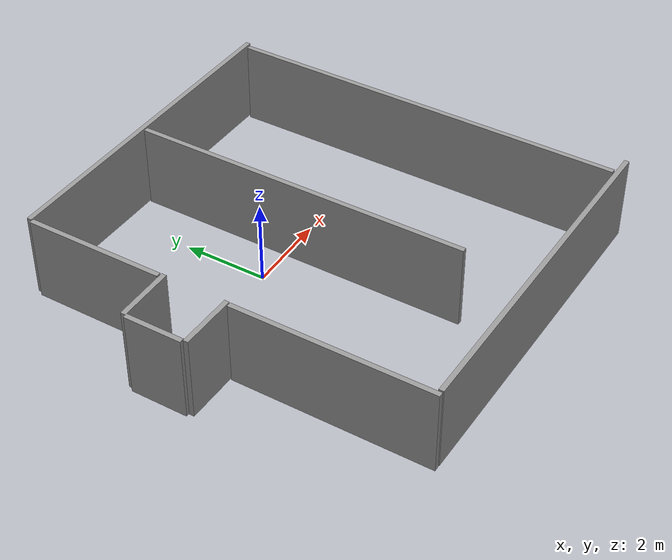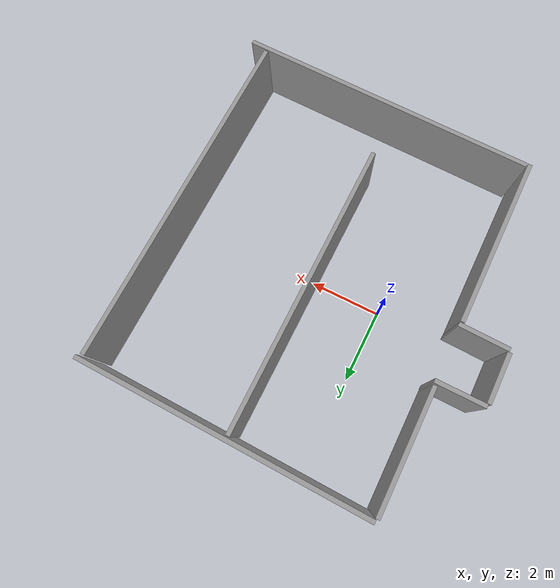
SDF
<?xml version='1.0'?>
<sdf version='1.6'>
  <model name='toiletenv'>
    <link name='link_0'>
      <inertial>
        <mass>3061.44</mass>
        <inertia>
          <ixx>1709.99</ixx>
          <ixy>0</ixy>
          <ixz>0</ixz>
          <iyy>1188.29</iyy>
          <iyz>0</iyz>
          <izz>529.767</izz>
        </inertia>
        <pose frame=''>0 0 0 0 -0 0</pose>
      </inertial>
      <pose frame=''>-3.44068 0.35836 0 0 -0 0</pose>
      <gravity>0</gravity>
      <self_collide>0</self_collide>
      <kinematic>0</kinematic>
      <enable_wind>0</enable_wind>
      <visual name='visual'>
        <pose frame=''>0 0 0 0 -0 0</pose>
        <geometry>
          <box>
            <size>0.125789 1.43552 2.15452</size>
          </box>
        </geometry>
        <material>
          <lighting>1</lighting>
          <script>
            <uri>file://media/materials/scripts/gazebo.material</uri>
            <name>Gazebo/Grey</name>
          </script>
          <shader type='vertex'>
            <normal_map>__default__</normal_map>
          </shader>
        </material>
        <transparency>0</transparency>
        <cast_shadows>1</cast_shadows>
      </visual>
      <collision name='collision'>
        <laser_retro>0</laser_retro>
        <max_contacts>10</max_contacts>
        <pose frame=''>0 0 0 0 -0 0</pose>
        <geometry>
          <box>
            <size>0.125789 1.43552 2.15452</size>
          </box>
        </geometry>
        <surface>
          <friction>
            <ode>
              <mu>1</mu>
              <mu2>1</mu2>
              <fdir1>0 0 0</fdir1>
              <slip1>0</slip1>
              <slip2>0</slip2>
            </ode>
            <torsional>
              <coefficient>1</coefficient>
              <patch_radius>0</patch_radius>
              <surface_radius>0</surface_radius>
              <use_patch_radius>1</use_patch_radius>
              <ode>
                <slip>0</slip>
              </ode>
            </torsional>
          </friction>
          <bounce>
            <restitution_coefficient>0</restitution_coefficient>
            <threshold>1e+06</threshold>
          </bounce>
          <contact>
            <collide_without_contact>0</collide_without_contact>
            <collide_without_contact_bitmask>1</collide_without_contact_bitmask>
            <collide_bitmask>1</collide_bitmask>
            <ode>
              <soft_cfm>0</soft_cfm>
              <soft_erp>0.2</soft_erp>
              <kp>1e+13</kp>
              <kd>1</kd>
              <max_vel>0.01</max_vel>
              <min_depth>0</min_depth>
            </ode>
            <bullet>
              <split_impulse>1</split_impulse>
              <split_impulse_penetration_threshold>-0.01</split_impulse_penetration_threshold>
              <soft_cfm>0</soft_cfm>
              <soft_erp>0.2</soft_erp>
              <kp>1e+13</kp>
              <kd>1</kd>
            </bullet>
          </contact>
        </surface>
      </collision>
    </link>
    <link name='link_0_clone'>
      <inertial>
        <mass>3061.44</mass>
        <inertia>
          <ixx>1709.99</ixx>
          <ixy>0</ixy>
          <ixz>0</ixz>
          <iyy>1188.29</iyy>
          <iyz>0</iyz>
          <izz>529.767</izz>
        </inertia>
        <pose frame=''>0 0 0 0 -0 0</pose>
      </inertial>
      <pose frame=''>-2.70872 1.14414 0 0 0 -1.57036</pose>
      <gravity>0</gravity>
      <self_collide>0</self_collide>
      <kinematic>0</kinematic>
      <enable_wind>0</enable_wind>
      <visual name='visual'>
        <pose frame=''>0 0 0 0 -0 0</pose>
        <geometry>
          <box>
            <size>0.125789 1.43552 2.15452</size>
          </box>
        </geometry>
        <material>
          <lighting>1</lighting>
          <script>
            <uri>file://media/materials/scripts/gazebo.material</uri>
            <name>Gazebo/Grey</name>
          </script>
          <shader type='vertex'>
            <normal_map>__default__</normal_map>
          </shader>
        </material>
        <transparency>0</transparency>
        <cast_shadows>1</cast_shadows>
      </visual>
      <collision name='collision'>
        <laser_retro>0</laser_retro>
        <max_contacts>10</max_contacts>
        <pose frame=''>0 0 0 0 -0 0</pose>
        <geometry>
          <box>
            <size>0.125789 1.43552 2.15452</size>
          </box>
        </geometry>
        <surface>
          <friction>
            <ode>
              <mu>1</mu>
              <mu2>1</mu2>
              <fdir1>0 0 0</fdir1>
              <slip1>0</slip1>
              <slip2>0</slip2>
            </ode>
            <torsional>
              <coefficient>1</coefficient>
              <patch_radius>0</patch_radius>
              <surface_radius>0</surface_radius>
              <use_patch_radius>1</use_patch_radius>
              <ode>
                <slip>0</slip>
              </ode>
            </torsional>
          </friction>
          <bounce>
            <restitution_coefficient>0</restitution_coefficient>
            <threshold>1e+06</threshold>
          </bounce>
          <contact>
            <collide_without_contact>0</collide_without_contact>
            <collide_without_contact_bitmask>1</collide_without_contact_bitmask>
            <collide_bitmask>1</collide_bitmask>
            <ode>
              <soft_cfm>0</soft_cfm>
              <soft_erp>0.2</soft_erp>
              <kp>1e+13</kp>
              <kd>1</kd>
              <max_vel>0.01</max_vel>
              <min_depth>0</min_depth>
            </ode>
            <bullet>
              <split_impulse>1</split_impulse>
              <split_impulse_penetration_threshold>-0.01</split_impulse_penetration_threshold>
              <soft_cfm>0</soft_cfm>
              <soft_erp>0.2</soft_erp>
              <kp>1e+13</kp>
              <kd>1</kd>
            </bullet>
          </contact>
        </surface>
      </collision>
    </link>
    <link name='link_0_clone_0'>
      <inertial>
        <mass>3061.44</mass>
        <inertia>
          <ixx>1709.99</ixx>
          <ixy>0</ixy>
          <ixz>0</ixz>
          <iyy>1188.29</iyy>
          <iyz>0</iyz>
          <izz>529.767</izz>
        </inertia>
        <pose frame=''>0 0 0 0 -0 0</pose>
      </inertial>
      <pose frame=''>-2.70687 -0.448529 0 0 -0 1.54952</pose>
      <gravity>0</gravity>
      <self_collide>0</self_collide>
      <kinematic>0</kinematic>
      <enable_wind>0</enable_wind>
      <visual name='visual'>
        <pose frame=''>0 0 0 0 -0 0</pose>
        <geometry>
          <box>
            <size>0.125789 1.43552 2.15452</size>
          </box>
        </geometry>
        <material>
          <lighting>1</lighting>
          <script>
            <uri>file://media/materials/scripts/gazebo.material</uri>
            <name>Gazebo/Grey</name>
          </script>
          <shader type='vertex'>
            <normal_map>__default__</normal_map>
          </shader>
        </material>
        <transparency>0</transparency>
        <cast_shadows>1</cast_shadows>
      </visual>
      <collision name='collision'>
        <laser_retro>0</laser_retro>
        <max_contacts>10</max_contacts>
        <pose frame=''>0 0 0 0 -0 0</pose>
        <geometry>
          <box>
            <size>0.125789 1.43552 2.15452</size>
          </box>
        </geometry>
        <surface>
          <friction>
            <ode>
              <mu>1</mu>
              <mu2>1</mu2>
              <fdir1>0 0 0</fdir1>
              <slip1>0</slip1>
              <slip2>0</slip2>
            </ode>
            <torsional>
              <coefficient>1</coefficient>
              <patch_radius>0</patch_radius>
              <surface_radius>0</surface_radius>
              <use_patch_radius>1</use_patch_radius>
              <ode>
                <slip>0</slip>
              </ode>
            </torsional>
          </friction>
          <bounce>
            <restitution_coefficient>0</restitution_coefficient>
            <threshold>1e+06</threshold>
          </bounce>
          <contact>
            <collide_without_contact>0</collide_without_contact>
            <collide_without_contact_bitmask>1</collide_without_contact_bitmask>
            <collide_bitmask>1</collide_bitmask>
            <ode>
              <soft_cfm>0</soft_cfm>
              <soft_erp>0.2</soft_erp>
              <kp>1e+13</kp>
              <kd>1</kd>
              <max_vel>0.01</max_vel>
              <min_depth>0</min_depth>
            </ode>
            <bullet>
              <split_impulse>1</split_impulse>
              <split_impulse_penetration_threshold>-0.01</split_impulse_penetration_threshold>
              <soft_cfm>0</soft_cfm>
              <soft_erp>0.2</soft_erp>
              <kp>1e+13</kp>
              <kd>1</kd>
            </bullet>
          </contact>
        </surface>
      </collision>
    </link>
    <link name='link_0_clone_1'>
      <inertial>
        <mass>10647.6</mass>
        <inertia>
          <ixx>26236.3</ixx>
          <ixy>0</ixy>
          <ixz>0</ixz>
          <iyy>4132.83</iyy>
          <iyz>0</iyz>
          <izz>22131.5</izz>
        </inertia>
        <pose frame=''>0 0 0 0 -0 0</pose>
      </inertial>
      <pose frame=''>-2.05907 -3.04924 0 0 -0 0</pose>
      <gravity>0</gravity>
      <self_collide>0</self_collide>
      <kinematic>0</kinematic>
      <enable_wind>0</enable_wind>
      <visual name='visual'>
        <pose frame=''>0 0 0 0 -0 0</pose>
        <geometry>
          <box>
            <size>0.125789 4.99268 2.15452</size>
          </box>
        </geometry>
        <material>
          <lighting>1</lighting>
          <script>
            <uri>file://media/materials/scripts/gazebo.material</uri>
            <name>Gazebo/Grey</name>
          </script>
          <shader type='vertex'>
            <normal_map>__default__</normal_map>
          </shader>
        </material>
        <transparency>0</transparency>
        <cast_shadows>1</cast_shadows>
      </visual>
      <collision name='collision'>
        <laser_retro>0</laser_retro>
        <max_contacts>10</max_contacts>
        <pose frame=''>0 0 0 0 -0 0</pose>
        <geometry>
          <box>
            <size>0.125789 4.99268 2.15452</size>
          </box>
        </geometry>
        <surface>
          <friction>
            <ode>
              <mu>1</mu>
              <mu2>1</mu2>
              <fdir1>0 0 0</fdir1>
              <slip1>0</slip1>
              <slip2>0</slip2>
            </ode>
            <torsional>
              <coefficient>1</coefficient>
              <patch_radius>0</patch_radius>
              <surface_radius>0</surface_radius>
              <use_patch_radius>1</use_patch_radius>
              <ode>
                <slip>0</slip>
              </ode>
            </torsional>
          </friction>
          <bounce>
            <restitution_coefficient>0</restitution_coefficient>
            <threshold>1e+06</threshold>
          </bounce>
          <contact>
            <collide_without_contact>0</collide_without_contact>
            <collide_without_contact_bitmask>1</collide_without_contact_bitmask>
            <collide_bitmask>1</collide_bitmask>
            <ode>
              <soft_cfm>0</soft_cfm>
              <soft_erp>0.2</soft_erp>
              <kp>1e+13</kp>
              <kd>1</kd>
              <max_vel>0.01</max_vel>
              <min_depth>0</min_depth>
            </ode>
            <bullet>
              <split_impulse>1</split_impulse>
              <split_impulse_penetration_threshold>-0.01</split_impulse_penetration_threshold>
              <soft_cfm>0</soft_cfm>
              <soft_erp>0.2</soft_erp>
              <kp>1e+13</kp>
              <kd>1</kd>
            </bullet>
          </contact>
        </surface>
      </collision>
    </link>
    <link name='link_0_clone_2'>
      <inertial>
        <mass>7404.1</mass>
        <inertia>
          <ixx>10301.1</ixx>
          <ixy>0</ixy>
          <ixz>0</ixz>
          <iyy>2873.89</iyy>
          <iyz>0</iyz>
          <izz>7446.75</izz>
        </inertia>
        <pose frame=''>0 0 0 0 -0 0</pose>
      </inertial>
      <pose frame=''>-2.06068 2.98173 0 0 -0 0</pose>
      <gravity>0</gravity>
      <self_collide>0</self_collide>
      <kinematic>0</kinematic>
      <enable_wind>0</enable_wind>
      <visual name='visual'>
        <pose frame=''>0 0 0 0 -0 0</pose>
        <geometry>
          <box>
            <size>0.125789 3.47179 2.15452</size>
          </box>
        </geometry>
        <material>
          <lighting>1</lighting>
          <script>
            <uri>file://media/materials/scripts/gazebo.material</uri>
            <name>Gazebo/Grey</name>
          </script>
          <shader type='vertex'>
            <normal_map>__default__</normal_map>
          </shader>
        </material>
        <transparency>0</transparency>
        <cast_shadows>1</cast_shadows>
      </visual>
      <collision name='collision'>
        <laser_retro>0</laser_retro>
        <max_contacts>10</max_contacts>
        <pose frame=''>0 0 0 0 -0 0</pose>
        <geometry>
          <box>
            <size>0.125789 3.47179 2.15452</size>
          </box>
        </geometry>
        <surface>
          <friction>
            <ode>
              <mu>1</mu>
              <mu2>1</mu2>
              <fdir1>0 0 0</fdir1>
              <slip1>0</slip1>
              <slip2>0</slip2>
            </ode>
            <torsional>
              <coefficient>1</coefficient>
              <patch_radius>0</patch_radius>
              <surface_radius>0</surface_radius>
              <use_patch_radius>1</use_patch_radius>
              <ode>
                <slip>0</slip>
              </ode>
            </torsional>
          </friction>
          <bounce>
            <restitution_coefficient>0</restitution_coefficient>
            <threshold>1e+06</threshold>
          </bounce>
          <contact>
            <collide_without_contact>0</collide_without_contact>
            <collide_without_contact_bitmask>1</collide_without_contact_bitmask>
            <collide_bitmask>1</collide_bitmask>
            <ode>
              <soft_cfm>0</soft_cfm>
              <soft_erp>0.2</soft_erp>
              <kp>1e+13</kp>
              <kd>1</kd>
              <max_vel>0.01</max_vel>
              <min_depth>0</min_depth>
            </ode>
            <bullet>
              <split_impulse>1</split_impulse>
              <split_impulse_penetration_threshold>-0.01</split_impulse_penetration_threshold>
              <soft_cfm>0</soft_cfm>
              <soft_erp>0.2</soft_erp>
              <kp>1e+13</kp>
              <kd>1</kd>
            </bullet>
          </contact>
        </surface>
      </collision>
    </link>
    <link name='link_0_clone_3'>
      <inertial>
        <mass>18266.8</mass>
        <inertia>
          <ixx>118745</ixx>
          <ixy>0</ixy>
          <ixz>0</ixz>
          <iyy>7090.22</iyy>
          <iyz>0</iyz>
          <izz>111703</izz>
        </inertia>
        <pose frame=''>0 0 0 0 -0 0</pose>
      </inertial>
      <pose frame=''>2.02981 0.357389 0 0 -0 0</pose>
      <gravity>0</gravity>
      <self_collide>0</self_collide>
      <kinematic>0</kinematic>
      <enable_wind>0</enable_wind>
      <visual name='visual'>
        <pose frame=''>0 0 0 0 -0 0</pose>
        <geometry>
          <box>
            <size>0.125789 8.56535 2.15452</size>
          </box>
        </geometry>
        <material>
          <lighting>1</lighting>
          <script>
            <uri>file://media/materials/scripts/gazebo.material</uri>
            <name>Gazebo/Grey</name>
          </script>
          <shader type='vertex'>
            <normal_map>__default__</normal_map>
          </shader>
        </material>
        <transparency>0</transparency>
        <cast_shadows>1</cast_shadows>
      </visual>
      <collision name='collision'>
        <laser_retro>0</laser_retro>
        <max_contacts>10</max_contacts>
        <pose frame=''>0 0 0 0 -0 0</pose>
        <geometry>
          <box>
            <size>0.125789 8.56535 2.15452</size>
          </box>
        </geometry>
        <surface>
          <friction>
            <ode>
              <mu>1</mu>
              <mu2>1</mu2>
              <fdir1>0 0 0</fdir1>
              <slip1>0</slip1>
              <slip2>0</slip2>
            </ode>
            <torsional>
              <coefficient>1</coefficient>
              <patch_radius>0</patch_radius>
              <surface_radius>0</surface_radius>
              <use_patch_radius>1</use_patch_radius>
              <ode>
                <slip>0</slip>
              </ode>
            </torsional>
          </friction>
          <bounce>
            <restitution_coefficient>0</restitution_coefficient>
            <threshold>1e+06</threshold>
          </bounce>
          <contact>
            <collide_without_contact>0</collide_without_contact>
            <collide_without_contact_bitmask>1</collide_without_contact_bitmask>
            <collide_bitmask>1</collide_bitmask>
            <ode>
              <soft_cfm>0</soft_cfm>
              <soft_erp>0.2</soft_erp>
              <kp>1e+13</kp>
              <kd>1</kd>
              <max_vel>0.01</max_vel>
              <min_depth>0</min_depth>
            </ode>
            <bullet>
              <split_impulse>1</split_impulse>
              <split_impulse_penetration_threshold>-0.01</split_impulse_penetration_threshold>
              <soft_cfm>0</soft_cfm>
              <soft_erp>0.2</soft_erp>
              <kp>1e+13</kp>
              <kd>1</kd>
            </bullet>
          </contact>
        </surface>
      </collision>
    </link>
    <link name='link_0_clone_3_clone'>
      <inertial>
        <mass>21541</mass>
        <inertia>
          <ixx>191473</ixx>
          <ixy>0</ixy>
          <ixz>0</ixz>
          <iyy>8361.12</iyy>
          <iyz>0</iyz>
          <izz>183169</izz>
        </inertia>
        <pose frame=''>0 0 0 0 -0 0</pose>
      </inertial>
      <pose frame=''>6.30349 -0.503106 0 0 -0 0</pose>
      <gravity>0</gravity>
      <self_collide>0</self_collide>
      <kinematic>0</kinematic>
      <enable_wind>0</enable_wind>
      <visual name='visual'>
        <pose frame=''>0 0 0 0 -0 0</pose>
        <geometry>
          <box>
            <size>0.125789 10.1006 2.15452</size>
          </box>
        </geometry>
        <material>
          <lighting>1</lighting>
          <script>
            <uri>file://media/materials/scripts/gazebo.material</uri>
            <name>Gazebo/Grey</name>
          </script>
          <shader type='vertex'>
            <normal_map>__default__</normal_map>
          </shader>
        </material>
        <transparency>0</transparency>
        <cast_shadows>1</cast_shadows>
      </visual>
      <collision name='collision'>
        <laser_retro>0</laser_retro>
        <max_contacts>10</max_contacts>
        <pose frame=''>0 0 0 0 -0 0</pose>
        <geometry>
          <box>
            <size>0.125789 10.1006 2.15452</size>
          </box>
        </geometry>
        <surface>
          <friction>
            <ode>
              <mu>1</mu>
              <mu2>1</mu2>
              <fdir1>0 0 0</fdir1>
              <slip1>0</slip1>
              <slip2>0</slip2>
            </ode>
            <torsional>
              <coefficient>1</coefficient>
              <patch_radius>0</patch_radius>
              <surface_radius>0</surface_radius>
              <use_patch_radius>1</use_patch_radius>
              <ode>
                <slip>0</slip>
              </ode>
            </torsional>
          </friction>
          <bounce>
            <restitution_coefficient>0</restitution_coefficient>
            <threshold>1e+06</threshold>
          </bounce>
          <contact>
            <collide_without_contact>0</collide_without_contact>
            <collide_without_contact_bitmask>1</collide_without_contact_bitmask>
            <collide_bitmask>1</collide_bitmask>
            <ode>
              <soft_cfm>0</soft_cfm>
              <soft_erp>0.2</soft_erp>
              <kp>1e+13</kp>
              <kd>1</kd>
              <max_vel>0.01</max_vel>
              <min_depth>0</min_depth>
            </ode>
            <bullet>
              <split_impulse>1</split_impulse>
              <split_impulse_penetration_threshold>-0.01</split_impulse_penetration_threshold>
              <soft_cfm>0</soft_cfm>
              <soft_erp>0.2</soft_erp>
              <kp>1e+13</kp>
              <kd>1</kd>
            </bullet>
          </contact>
        </surface>
      </collision>
    </link>
    <link name='link_0_clone_4'>
      <inertial>
        <mass>18126.2</mass>
        <inertia>
          <ixx>116131</ixx>
          <ixy>0</ixy>
          <ixz>0</ixz>
          <iyy>7035.65</iyy>
          <iyz>0</iyz>
          <izz>109143</izz>
        </inertia>
        <pose frame=''>0 0 0 0 -0 0</pose>
      </inertial>
      <pose frame=''>2.20964 4.73685 0 0 0 -1.587</pose>
      <gravity>0</gravity>
      <self_collide>0</self_collide>
      <kinematic>0</kinematic>
      <enable_wind>0</enable_wind>
      <visual name='visual'>
        <pose frame=''>0 0 0 0 -0 0</pose>
        <geometry>
          <box>
            <size>0.125789 8.49938 2.15452</size>
          </box>
        </geometry>
        <material>
          <lighting>1</lighting>
          <script>
            <uri>file://media/materials/scripts/gazebo.material</uri>
            <name>Gazebo/Grey</name>
          </script>
          <shader type='vertex'>
            <normal_map>__default__</normal_map>
          </shader>
        </material>
        <transparency>0</transparency>
        <cast_shadows>1</cast_shadows>
      </visual>
      <collision name='collision'>
        <laser_retro>0</laser_retro>
        <max_contacts>10</max_contacts>
        <pose frame=''>0 0 0 0 -0 0</pose>
        <geometry>
          <box>
            <size>0.125789 8.49938 2.15452</size>
          </box>
        </geometry>
        <surface>
          <friction>
            <ode>
              <mu>1</mu>
              <mu2>1</mu2>
              <fdir1>0 0 0</fdir1>
              <slip1>0</slip1>
              <slip2>0</slip2>
            </ode>
            <torsional>
              <coefficient>1</coefficient>
              <patch_radius>0</patch_radius>
              <surface_radius>0</surface_radius>
              <use_patch_radius>1</use_patch_radius>
              <ode>
                <slip>0</slip>
              </ode>
            </torsional>
          </friction>
          <bounce>
            <restitution_coefficient>0</restitution_coefficient>
            <threshold>1e+06</threshold>
          </bounce>
          <contact>
            <collide_without_contact>0</collide_without_contact>
            <collide_without_contact_bitmask>1</collide_without_contact_bitmask>
            <collide_bitmask>1</collide_bitmask>
            <ode>
              <soft_cfm>0</soft_cfm>
              <soft_erp>0.2</soft_erp>
              <kp>1e+13</kp>
              <kd>1</kd>
              <max_vel>0.01</max_vel>
              <min_depth>0</min_depth>
            </ode>
            <bullet>
              <split_impulse>1</split_impulse>
              <split_impulse_penetration_threshold>-0.01</split_impulse_penetration_threshold>
              <soft_cfm>0</soft_cfm>
              <soft_erp>0.2</soft_erp>
              <kp>1e+13</kp>
              <kd>1</kd>
            </bullet>
          </contact>
        </surface>
      </collision>
    </link>
    <link name='link_0_clone_5'>
      <inertial>
        <mass>18728.3</mass>
        <inertia>
          <ixx>127604</ixx>
          <ixy>0</ixy>
          <ixz>0</ixz>
          <iyy>7269.34</iyy>
          <iyz>0</iyz>
          <izz>120384</izz>
        </inertia>
        <pose frame=''>0 0 0 0 -0 0</pose>
      </inertial>
      <pose frame=''>2.43307 -5.57761 0 0 0 -1.59076</pose>
      <gravity>0</gravity>
      <self_collide>0</self_collide>
      <kinematic>0</kinematic>
      <enable_wind>0</enable_wind>
      <visual name='visual'>
        <pose frame=''>0 0 0 0 -0 0</pose>
        <geometry>
          <box>
            <size>0.125789 8.78176 2.15452</size>
          </box>
        </geometry>
        <material>
          <lighting>1</lighting>
          <script>
            <uri>file://media/materials/scripts/gazebo.material</uri>
            <name>Gazebo/Grey</name>
          </script>
          <shader type='vertex'>
            <normal_map>__default__</normal_map>
          </shader>
        </material>
        <transparency>0</transparency>
        <cast_shadows>1</cast_shadows>
      </visual>
      <collision name='collision'>
        <laser_retro>0</laser_retro>
        <max_contacts>10</max_contacts>
        <pose frame=''>0 0 0 0 -0 0</pose>
        <geometry>
          <box>
            <size>0.125789 8.78176 2.15452</size>
          </box>
        </geometry>
        <surface>
          <friction>
            <ode>
              <mu>1</mu>
              <mu2>1</mu2>
              <fdir1>0 0 0</fdir1>
              <slip1>0</slip1>
              <slip2>0</slip2>
            </ode>
            <torsional>
              <coefficient>1</coefficient>
              <patch_radius>0</patch_radius>
              <surface_radius>0</surface_radius>
              <use_patch_radius>1</use_patch_radius>
              <ode>
                <slip>0</slip>
              </ode>
            </torsional>
          </friction>
          <bounce>
            <restitution_coefficient>0</restitution_coefficient>
            <threshold>1e+06</threshold>
          </bounce>
          <contact>
            <collide_without_contact>0</collide_without_contact>
            <collide_without_contact_bitmask>1</collide_without_contact_bitmask>
            <collide_bitmask>1</collide_bitmask>
            <ode>
              <soft_cfm>0</soft_cfm>
              <soft_erp>0.2</soft_erp>
              <kp>1e+13</kp>
              <kd>1</kd>
              <max_vel>0.01</max_vel>
              <min_depth>0</min_depth>
            </ode>
            <bullet>
              <split_impulse>1</split_impulse>
              <split_impulse_penetration_threshold>-0.01</split_impulse_penetration_threshold>
              <soft_cfm>0</soft_cfm>
              <soft_erp>0.2</soft_erp>
              <kp>1e+13</kp>
              <kd>1</kd>
            </bullet>
          </contact>
        </surface>
      </collision>
    </link>
    <static>1</static>
    <allow_auto_disable>1</allow_auto_disable>
  </model>
</sdf>
